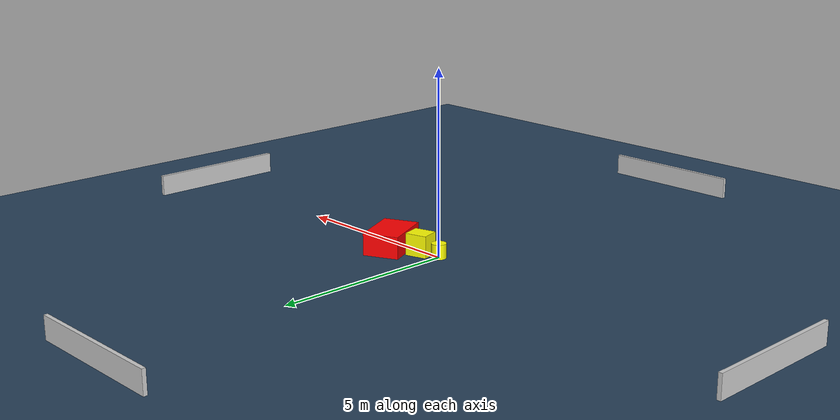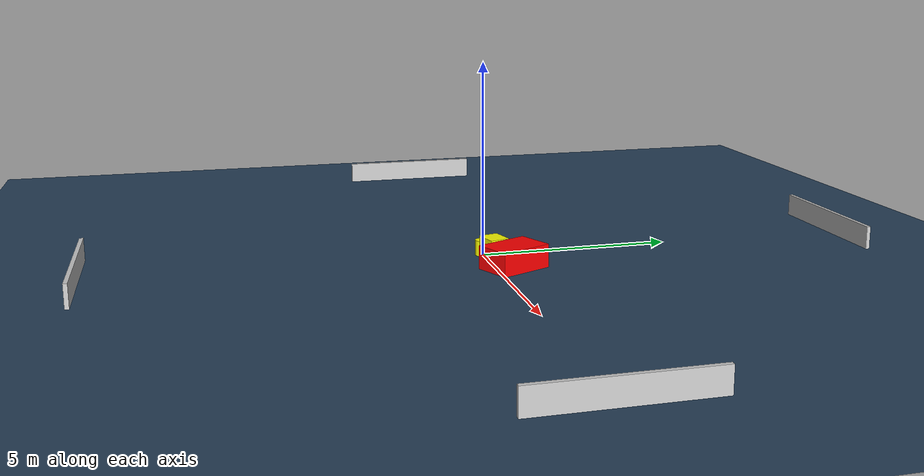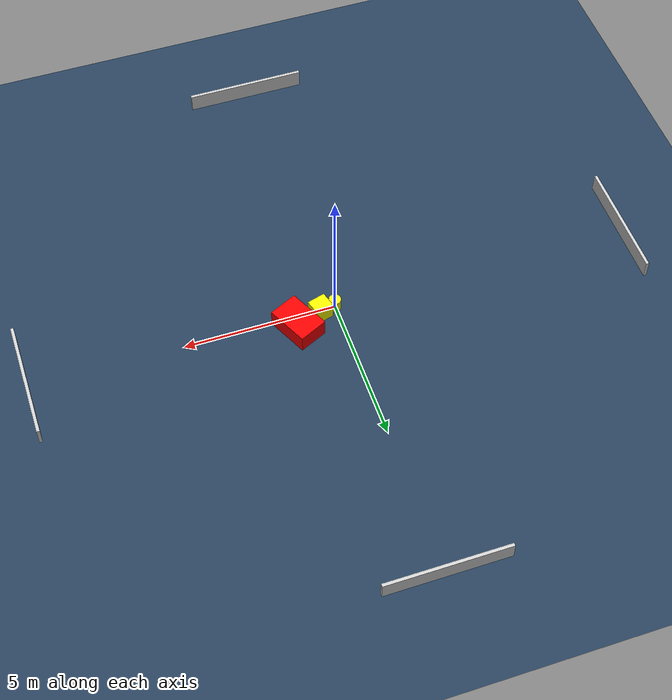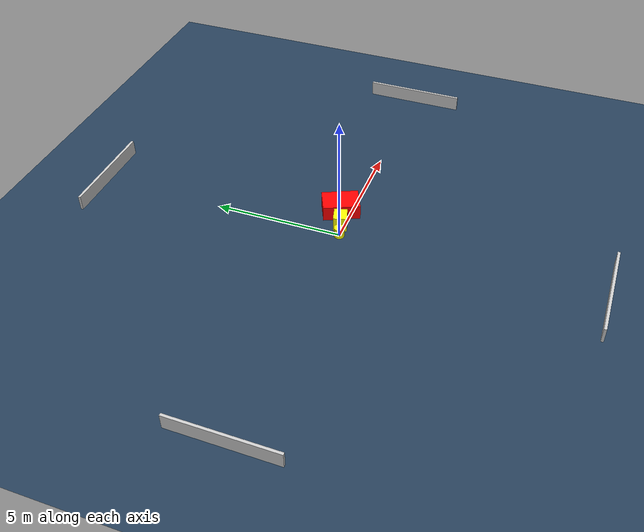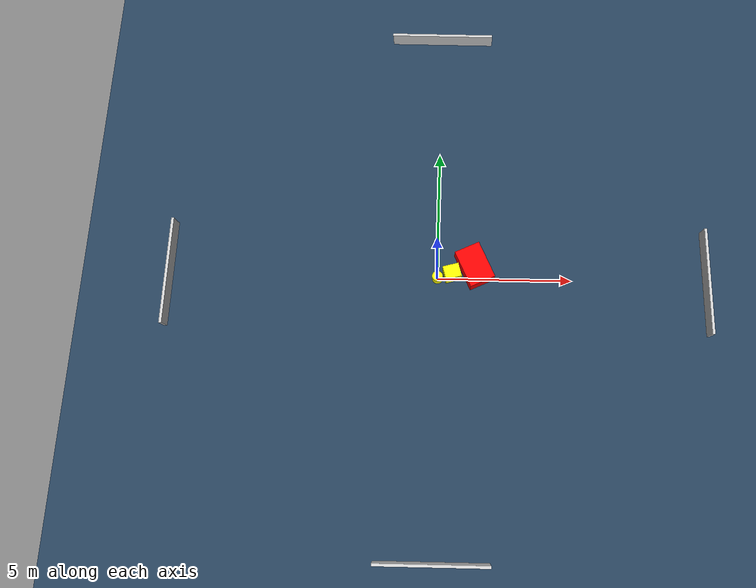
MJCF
<?xml version="1.0" ?>
<mujoco model="generated_environment">
  <option timestep="0.01" integrator="RK4" cone="elliptic"/>
  <default>
    <geom density="1"/>
  </default>
  <asset>
    <texture builtin="gradient" height="3072" name="skybox" rgb1="0.3 0.5 0.7" rgb2="0 0 0" type="skybox" width="512"/>
    <texture builtin="checker" height="300" name="groundplane" rgb1="0.2 0.3 0.4" rgb2="0.1 0.2 0.3" type="2d" width="300"/>
    <material name="groundplane" reflectance="0.2" texrepeat="5 5" texture="groundplane"/>
  </asset>
  <worldbody>
    <light dir="0 0 -1" directional="true" pos="0 0 1.5"/>
    <geom condim="3" friction="0.5 0.005 0.001" material="groundplane" name="floor" pos="0 0 0" size="0 0 0.05" type="plane"/>
    <body name="walls">
      <geom name="wall_1" condim="4" pos="-10.0 0.0 0.3" rgba="0.800000011920929 0.800000011920929 0.800000011920929 1.0" size="0.05 2.0 0.3" type="box"/>
      <geom name="wall_2" condim="4" pos="10.0 0.0 0.3" rgba="0.800000011920929 0.800000011920929 0.800000011920929 1.0" size="0.05 2.0 0.3" type="box"/>
      <geom name="wall_3" condim="4" pos="0.0 -10.0 0.3" rgba="0.800000011920929 0.800000011920929 0.800000011920929 1.0" size="2.0 0.05 0.3" type="box"/>
      <geom name="wall_4" condim="4" pos="0.0 10.0 0.3" rgba="0.800000011920929 0.800000011920929 0.800000011920929 1.0" size="2.0 0.05 0.3" type="box"/>
    </body>
    <body name="robot">
      <joint name="joint_x" type="slide" pos="0 0 0" axis="1 0 0"/>
      <joint name="joint_y" type="slide" pos="0 0 0" axis="0 1 0"/>
      <geom name="robot" type="cylinder" pos="0.0 0.0 0.2" size="0.2 0.2 0.0" mass="5.0" friction="1.0 0.005 0.0001" condim="4" rgba="1.0 1.0 0.0 1.0"/>
    </body>
    <body name="obstacle_1_movable">
      <geom name="obstacle_1_movable" condim="4" pos="0.537853642520582 0.1505590522144723 0.3" euler="0 0 195.60044375943804" friction="0.0 0.005 0.001" rgba="1.0 1.0 0.0 1.0" size="0.30432290651030675 0.2576084160343004 0.3" type="box" mass="0.1"/>
      <joint type="free"/>
    </body>
    <body name="obstacle_2_static">
      <geom name="obstacle_2_static" condim="4" pos="1.370107312612232 0.43979991567984167 0.3" euler="0 0 294.9992095845036" friction="0.0 0.005 0.001" rgba="1.0 0.0 0.0 1.0" size="0.71760635186048 0.4916593062403625 0.3" type="box"/>
    </body>
  </worldbody>
  <actuator>
    <motor name="actuator_x" joint="joint_x" gear="1" ctrlrange="-1 1"/>
    <motor name="actuator_y" joint="joint_y" gear="1" ctrlrange="-1 1"/>
  </actuator>
</mujoco>
